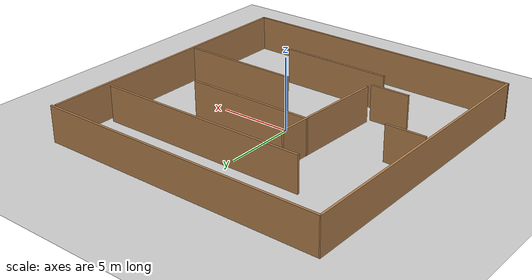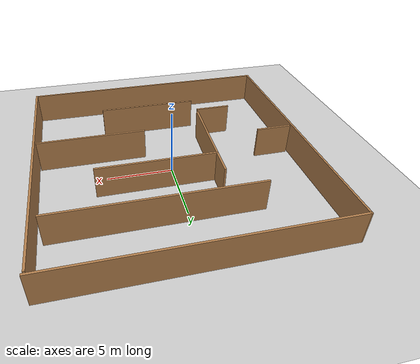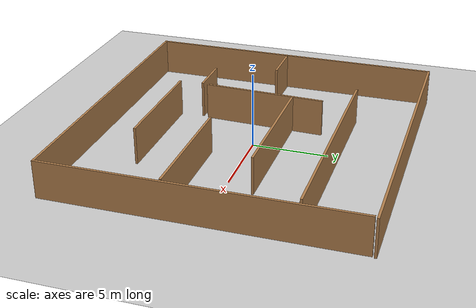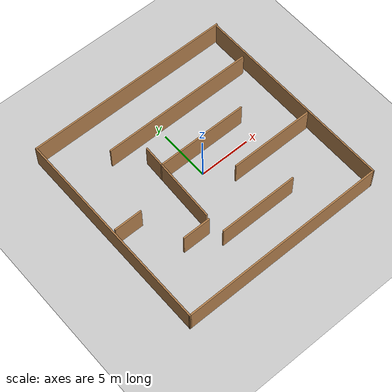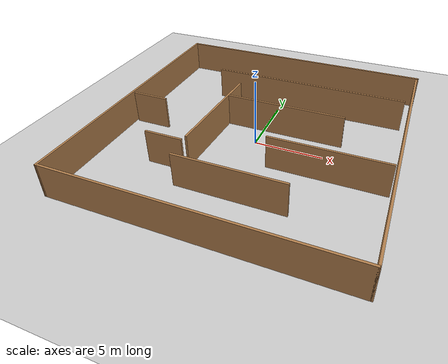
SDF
<sdf version="1.7">
 <world name="default">
  <light name="sun" type="directional">
   <pose>0 0 10 0 -0 0</pose>
   <diffuse>0.8 0.8 0.8 1</diffuse>
   <specular>0.2 0.2 0.2 1</specular>
   <attenuation>
    <range>1000</range>
    <constant>0.9</constant>
    <linear>0.01</linear>
    <quadratic>0.001</quadratic>
   </attenuation>
   <direction>-0.5 0.1 -0.9</direction>
   <spot><inner_angle>0</inner_angle><outer_angle>0</outer_angle><falloff>0</falloff></spot>
  </light>
  <model name="ground_plane">
   <static>1</static>
   <link name="link">
    <collision name="collision">
     <geometry><plane><normal>0 0 1</normal><size>100 100</size></plane></geometry>
     <surface><friction><ode><mu>100</mu><mu2>50</mu2></ode></friction></surface>
    </collision>
    <visual name="visual">
     <cast_shadows>0</cast_shadows>
     <geometry><plane><normal>0 0 1</normal><size>100 100</size></plane></geometry>
     <material>
      <script><uri>file://media/materials/scripts/gazebo.material</uri><name>Gazebo/Grey</name></script>
     </material>
    </visual>
   </link>
  </model>
  <gravity>0 0 -9.8</gravity>
  <magnetic_field>6e-06 2.3e-05 -4.2e-05</magnetic_field>
  <atmosphere type="adiabatic"/>
  <physics type="ode">
   <max_step_size>0.001</max_step_size>
   <real_time_factor>1</real_time_factor>
   <real_time_update_rate>1000</real_time_update_rate>
  </physics>
  <scene><ambient>0.4 0.4 0.4 1</ambient><background>0.7 0.7 0.7 1</background><shadows>1</shadows></scene>
  <spherical_coordinates>
   <surface_model>EARTH_WGS84</surface_model>
   <latitude_deg>0</latitude_deg>
   <longitude_deg>0</longitude_deg>
   <elevation>0</elevation>
   <heading_deg>0</heading_deg>
  </spherical_coordinates>
  <model name="via_nav_testmap">
   <pose>0.081538 -0.09965 0 0 -0 0</pose>
   <link name="Wall_10">
    <collision name="Wall_10_Collision">
     <geometry><box><size>20.25 0.15 2.5</size></box></geometry>
     <pose>0 0 1.25 0 -0 0</pose>
    </collision>
    <visual name="Wall_10_Visual">
     <pose>0 0 1.25 0 -0 0</pose>
     <geometry><box><size>20.25 0.15 2.5</size></box></geometry>
     <material>
      <script><uri>file://media/materials/scripts/gazebo.material</uri><name>Gazebo/Wood</name></script>
      <ambient>1 1 1 1</ambient>
     </material>
     <meta><layer>0</layer></meta>
    </visual>
    <pose>0.045943 10.05 0 0 -0 3.14159</pose>
   </link>
   <link name="Wall_11">
    <collision name="Wall_11_Collision">
     <geometry><box><size>20.2501 0.15 2.5</size></box></geometry>
     <pose>0 0 1.25 0 -0 0</pose>
    </collision>
    <visual name="Wall_11_Visual">
     <pose>0 0 1.25 0 -0 0</pose>
     <geometry><box><size>20.2501 0.15 2.5</size></box></geometry>
     <material>
      <script><uri>file://media/materials/scripts/gazebo.material</uri><name>Gazebo/Wood</name></script>
      <ambient>1 1 1 1</ambient>
     </material>
     <meta><layer>0</layer></meta>
    </visual>
    <pose>-10.0805 -0 0 0 -0 -1.57232</pose>
   </link>
   <link name="Wall_12">
    <collision name="Wall_12_Collision">
     <geometry><box><size>20.25 0.15 2.5</size></box></geometry>
     <pose>0 0 1.25 0 -0 0</pose>
    </collision>
    <visual name="Wall_12_Visual">
     <pose>0 0 1.25 0 -0 0</pose>
     <geometry><box><size>20.25 0.15 2.5</size></box></geometry>
     <material>
      <script><uri>file://media/materials/scripts/gazebo.material</uri><name>Gazebo/Wood</name></script>
      <ambient>1 1 1 1</ambient>
     </material>
     <meta><layer>0</layer></meta>
    </visual>
    <pose>-0.045827 -10.05 0 0 -0 0</pose>
   </link>
   <link name="Wall_13">
    <collision name="Wall_13_Collision">
     <geometry><box><size>20 0.15 2.5</size></box></geometry>
     <pose>0 0 1.25 0 -0 0</pose>
    </collision>
    <visual name="Wall_13_Visual">
     <pose>0 0 1.25 0 -0 0</pose>
     <geometry><box><size>20 0.15 2.5</size></box></geometry>
     <material>
      <script><uri>file://media/materials/scripts/gazebo.material</uri><name>Gazebo/Wood</name></script>
      <ambient>1 1 1 1</ambient>
     </material>
     <meta><layer>0</layer></meta>
    </visual>
    <pose>10.0042 -0.125 0 0 -0 1.5708</pose>
   </link>
   <link name="Wall_18">
    <collision name="Wall_18_Collision">
     <geometry><box><size>8.2 0.15 2.5</size></box></geometry>
     <pose>0 0 1.25 0 -0 0</pose>
    </collision>
    <visual name="Wall_18_Visual">
     <pose>0 0 1.25 0 -0 0</pose>
     <geometry><box><size>8.2 0.15 2.5</size></box></geometry>
     <material>
      <script><uri>file://media/materials/scripts/gazebo.material</uri><name>Gazebo/Wood</name></script>
      <ambient>1 1 1 1</ambient>
     </material>
     <meta><layer>0</layer></meta>
    </visual>
    <pose>-3.12005 -0.08242 0 0 -0 -1.61107</pose>
   </link>
   <link name="Wall_21">
    <collision name="Wall_21_Collision">
     <geometry><box><size>9 0.15 2.5</size></box></geometry>
     <pose>0 0 1.25 0 -0 0</pose>
    </collision>
    <visual name="Wall_21_Visual">
     <pose>0 0 1.25 0 -0 0</pose>
     <geometry><box><size>9 0.15 2.5</size></box></geometry>
     <material>
      <script><uri>file://media/materials/scripts/gazebo.material</uri><name>Gazebo/Wood</name></script>
      <ambient>1 1 1 1</ambient>
     </material>
     <meta><layer>0</layer></meta>
    </visual>
    <pose>1.38073 1.92062 0 0 -0 0</pose>
   </link>
   <link name="Wall_27">
    <collision name="Wall_27_Collision">
     <geometry><box><size>15 0.15 2.5</size></box></geometry>
     <pose>0 0 1.25 0 -0 0</pose>
    </collision>
    <visual name="Wall_27_Visual">
     <pose>0 0 1.25 0 -0 0</pose>
     <geometry><box><size>15 0.15 2.5</size></box></geometry>
     <material>
      <script><uri>file://media/materials/scripts/gazebo.material</uri><name>Gazebo/Wood</name></script>
      <ambient>1 1 1 1</ambient>
     </material>
     <meta><layer>0</layer></meta>
    </visual>
    <pose>2.03288 5.80339 0 0 -0 3.14159</pose>
   </link>
   <link name="Wall_29">
    <collision name="Wall_29_Collision">
     <geometry><box><size>2.75 0.15 2.5</size></box></geometry>
     <pose>0 0 1.25 0 -0 0</pose>
    </collision>
    <visual name="Wall_29_Visual">
     <pose>0 0 1.25 0 -0 0</pose>
     <geometry><box><size>2.75 0.15 2.5</size></box></geometry>
     <material>
      <script><uri>file://media/materials/scripts/gazebo.material</uri><name>Gazebo/Wood</name></script>
      <ambient>1 1 1 1</ambient>
     </material>
     <meta><layer>0</layer></meta>
    </visual>
    <pose>-8.48674 -0.349399 0 0 -0 0</pose>
   </link>
   <link name="Wall_32">
    <collision name="Wall_32_Collision">
     <geometry><box><size>2.75 0.15 2.5</size></box></geometry>
     <pose>0 0 1.25 0 -0 0</pose>
    </collision>
    <visual name="Wall_32_Visual">
     <pose>0 0 1.25 0 -0 0</pose>
     <geometry><box><size>2.75 0.15 2.5</size></box></geometry>
     <material>
      <script><uri>file://media/materials/scripts/gazebo.material</uri><name>Gazebo/Wood</name></script>
      <ambient>1 1 1 1</ambient>
     </material>
     <meta><layer>0</layer></meta>
    </visual>
    <pose>-4.74583 -4.5631 0 0 -0 3.14159</pose>
   </link>
   <link name="Wall_35">
    <collision name="Wall_35_Collision">
     <geometry><box><size>7.75 0.15 2.5</size></box></geometry>
     <pose>0 0 1.25 0 -0 0</pose>
    </collision>
    <visual name="Wall_35_Visual">
     <pose>0 0 1.25 0 -0 0</pose>
     <geometry><box><size>7.75 0.15 2.5</size></box></geometry>
     <material>
      <script><uri>file://media/materials/scripts/gazebo.material</uri><name>Gazebo/Wood</name></script>
      <ambient>1 1 1 1</ambient>
     </material>
     <meta><layer>0</layer></meta>
    </visual>
    <pose>0.604173 -6.1631 0 0 -0 0</pose>
   </link>
   <link name="Wall_5">
    <collision name="Wall_5_Collision">
     <geometry><box><size>8.25 0.15 2.5</size></box></geometry>
     <pose>0 0 1.25 0 -0 0</pose>
    </collision>
    <visual name="Wall_5_Visual">
     <pose>0 0 1.25 0 -0 0</pose>
     <geometry><box><size>8.25 0.15 2.5</size></box></geometry>
     <material>
      <script><uri>file://media/materials/scripts/gazebo.material</uri><name>Gazebo/Wood</name></script>
      <ambient>1 1 1 1</ambient>
     </material>
     <meta><layer>0</layer></meta>
    </visual>
    <pose>5.70417 -2.2131 0 0 -0 0</pose>
   </link>
   <static>1</static>
  </model>
 </world>
</sdf>
